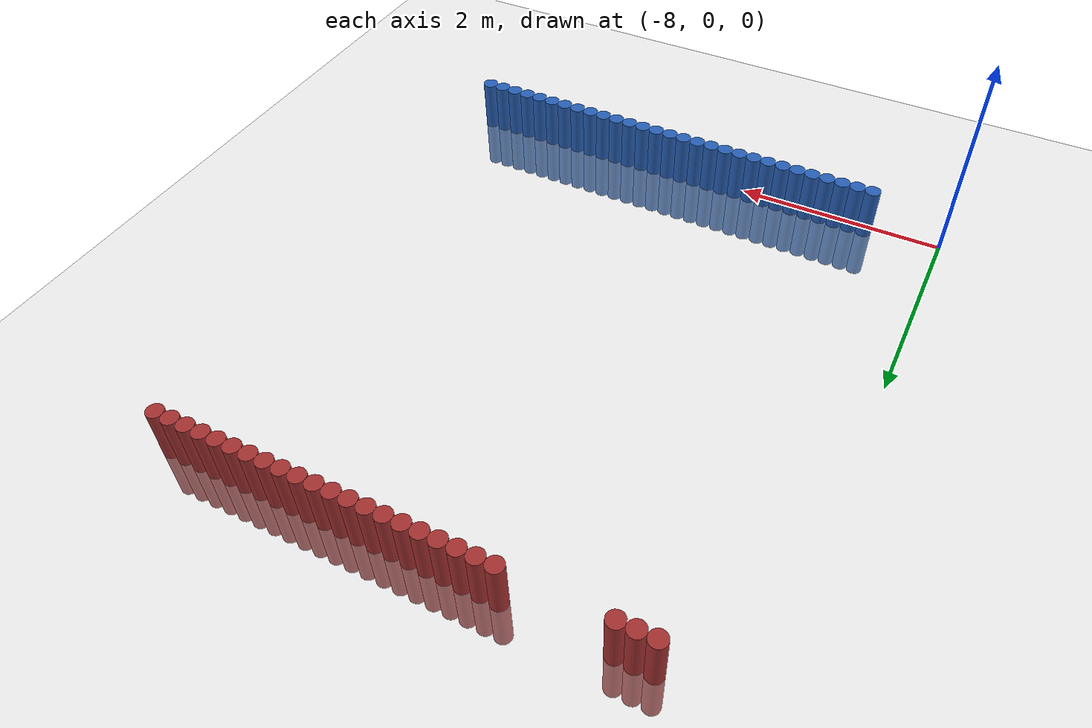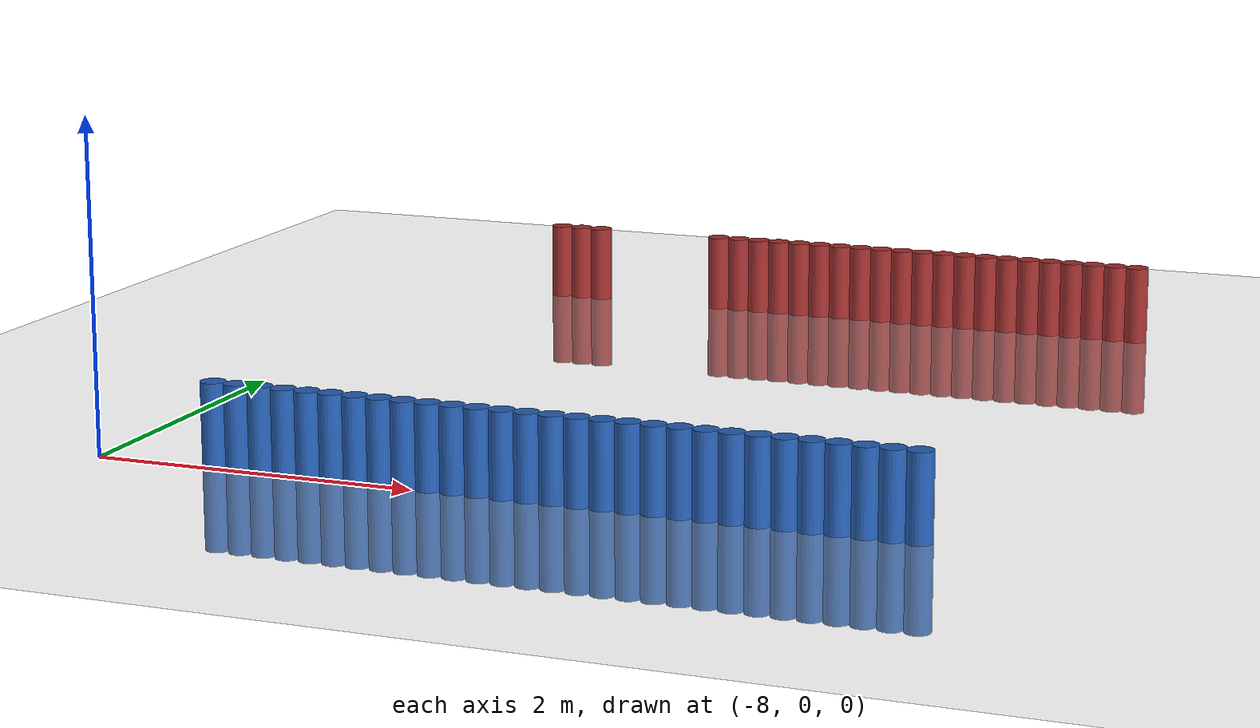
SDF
<sdf version="1.6">
 <world name="default">
  <model name="ground_plane">
   <static>1</static>
   <link name="link">
    <collision name="collision">
     <geometry><plane><normal>0 0 1</normal><size>100 100</size></plane></geometry>
     <surface><friction><ode><mu>100</mu><mu2>50</mu2></ode></friction></surface>
    </collision>
    <visual name="visual">
     <cast_shadows>0</cast_shadows>
     <geometry><plane><normal>0 0 1</normal><size>100 100</size></plane></geometry>
     <material>
      <script><uri>file://media/materials/scripts/gazebo.material</uri><name>Gazebo/Grey</name></script>
     </material>
    </visual>
   </link>
  </model>
  <model name="unit_cylinder_20">
   <static>1</static>
   <pose>-3.075000 0.075000 0.000000 0.000000 0.000000 0.000000</pose>
   <link name="link">
    <inertial>
     <mass>1</mass>
     <inertia><ixx>0.145833</ixx><ixy>0</ixy><ixz>0</ixz><iyy>0.145833</iyy><iyz>0</iyz><izz>0.125</izz></inertia>
    </inertial>
    <collision name="collision">
     <geometry><cylinder><radius>0.075000</radius><length>1</length></cylinder></geometry>
    </collision>
    <visual name="visual">
     <geometry><cylinder><radius>0.075000</radius><length>1</length></cylinder></geometry>
     <material>
      <ambient>0.152000 0.379000 0.720000 1</ambient>
      <diffuse>0.152000 0.379000 0.720000 1</diffuse>
     </material>
     <material>
      <script><name>Gazebo/Grey</name><uri>file://media/materials/scripts/gazebo.material</uri></script>
     </material>
    </visual>
   </link>
  </model>
  <model name="unit_cylinder_21">
   <static>1</static>
   <pose>-3.225000 0.075000 0.000000 0.000000 0.000000 0.000000</pose>
   <link name="link">
    <inertial>
     <mass>1</mass>
     <inertia><ixx>0.145833</ixx><ixy>0</ixy><ixz>0</ixz><iyy>0.145833</iyy><iyz>0</iyz><izz>0.125</izz></inertia>
    </inertial>
    <collision name="collision">
     <geometry><cylinder><radius>0.075000</radius><length>1</length></cylinder></geometry>
    </collision>
    <visual name="visual">
     <geometry><cylinder><radius>0.075000</radius><length>1</length></cylinder></geometry>
     <material>
      <ambient>0.152000 0.379000 0.720000 1</ambient>
      <diffuse>0.152000 0.379000 0.720000 1</diffuse>
     </material>
     <material>
      <script><name>Gazebo/Grey</name><uri>file://media/materials/scripts/gazebo.material</uri></script>
     </material>
    </visual>
   </link>
  </model>
  <model name="unit_cylinder_22">
   <static>1</static>
   <pose>-3.375000 0.075000 0.000000 0.000000 0.000000 0.000000</pose>
   <link name="link">
    <inertial>
     <mass>1</mass>
     <inertia><ixx>0.145833</ixx><ixy>0</ixy><ixz>0</ixz><iyy>0.145833</iyy><iyz>0</iyz><izz>0.125</izz></inertia>
    </inertial>
    <collision name="collision">
     <geometry><cylinder><radius>0.075000</radius><length>1</length></cylinder></geometry>
    </collision>
    <visual name="visual">
     <geometry><cylinder><radius>0.075000</radius><length>1</length></cylinder></geometry>
     <material>
      <ambient>0.152000 0.379000 0.720000 1</ambient>
      <diffuse>0.152000 0.379000 0.720000 1</diffuse>
     </material>
     <material>
      <script><name>Gazebo/Grey</name><uri>file://media/materials/scripts/gazebo.material</uri></script>
     </material>
    </visual>
   </link>
  </model>
  <model name="unit_cylinder_23">
   <static>1</static>
   <pose>-3.525000 0.075000 0.000000 0.000000 0.000000 0.000000</pose>
   <link name="link">
    <inertial>
     <mass>1</mass>
     <inertia><ixx>0.145833</ixx><ixy>0</ixy><ixz>0</ixz><iyy>0.145833</iyy><iyz>0</iyz><izz>0.125</izz></inertia>
    </inertial>
    <collision name="collision">
     <geometry><cylinder><radius>0.075000</radius><length>1</length></cylinder></geometry>
    </collision>
    <visual name="visual">
     <geometry><cylinder><radius>0.075000</radius><length>1</length></cylinder></geometry>
     <material>
      <ambient>0.152000 0.379000 0.720000 1</ambient>
      <diffuse>0.152000 0.379000 0.720000 1</diffuse>
     </material>
     <material>
      <script><name>Gazebo/Grey</name><uri>file://media/materials/scripts/gazebo.material</uri></script>
     </material>
    </visual>
   </link>
  </model>
  <model name="unit_cylinder_24">
   <static>1</static>
   <pose>-3.675000 0.075000 0.000000 0.000000 0.000000 0.000000</pose>
   <link name="link">
    <inertial>
     <mass>1</mass>
     <inertia><ixx>0.145833</ixx><ixy>0</ixy><ixz>0</ixz><iyy>0.145833</iyy><iyz>0</iyz><izz>0.125</izz></inertia>
    </inertial>
    <collision name="collision">
     <geometry><cylinder><radius>0.075000</radius><length>1</length></cylinder></geometry>
    </collision>
    <visual name="visual">
     <geometry><cylinder><radius>0.075000</radius><length>1</length></cylinder></geometry>
     <material>
      <ambient>0.152000 0.379000 0.720000 1</ambient>
      <diffuse>0.152000 0.379000 0.720000 1</diffuse>
     </material>
     <material>
      <script><name>Gazebo/Grey</name><uri>file://media/materials/scripts/gazebo.material</uri></script>
     </material>
    </visual>
   </link>
  </model>
  <model name="unit_cylinder_25">
   <static>1</static>
   <pose>-3.825000 0.075000 0.000000 0.000000 0.000000 0.000000</pose>
   <link name="link">
    <inertial>
     <mass>1</mass>
     <inertia><ixx>0.145833</ixx><ixy>0</ixy><ixz>0</ixz><iyy>0.145833</iyy><iyz>0</iyz><izz>0.125</izz></inertia>
    </inertial>
    <collision name="collision">
     <geometry><cylinder><radius>0.075000</radius><length>1</length></cylinder></geometry>
    </collision>
    <visual name="visual">
     <geometry><cylinder><radius>0.075000</radius><length>1</length></cylinder></geometry>
     <material>
      <ambient>0.152000 0.379000 0.720000 1</ambient>
      <diffuse>0.152000 0.379000 0.720000 1</diffuse>
     </material>
     <material>
      <script><name>Gazebo/Grey</name><uri>file://media/materials/scripts/gazebo.material</uri></script>
     </material>
    </visual>
   </link>
  </model>
  <model name="unit_cylinder_26">
   <static>1</static>
   <pose>-3.975000 0.075000 0.000000 0.000000 0.000000 0.000000</pose>
   <link name="link">
    <inertial>
     <mass>1</mass>
     <inertia><ixx>0.145833</ixx><ixy>0</ixy><ixz>0</ixz><iyy>0.145833</iyy><iyz>0</iyz><izz>0.125</izz></inertia>
    </inertial>
    <collision name="collision">
     <geometry><cylinder><radius>0.075000</radius><length>1</length></cylinder></geometry>
    </collision>
    <visual name="visual">
     <geometry><cylinder><radius>0.075000</radius><length>1</length></cylinder></geometry>
     <material>
      <ambient>0.152000 0.379000 0.720000 1</ambient>
      <diffuse>0.152000 0.379000 0.720000 1</diffuse>
     </material>
     <material>
      <script><name>Gazebo/Grey</name><uri>file://media/materials/scripts/gazebo.material</uri></script>
     </material>
    </visual>
   </link>
  </model>
  <model name="unit_cylinder_27">
   <static>1</static>
   <pose>-4.125000 0.075000 0.000000 0.000000 0.000000 0.000000</pose>
   <link name="link">
    <inertial>
     <mass>1</mass>
     <inertia><ixx>0.145833</ixx><ixy>0</ixy><ixz>0</ixz><iyy>0.145833</iyy><iyz>0</iyz><izz>0.125</izz></inertia>
    </inertial>
    <collision name="collision">
     <geometry><cylinder><radius>0.075000</radius><length>1</length></cylinder></geometry>
    </collision>
    <visual name="visual">
     <geometry><cylinder><radius>0.075000</radius><length>1</length></cylinder></geometry>
     <material>
      <ambient>0.152000 0.379000 0.720000 1</ambient>
      <diffuse>0.152000 0.379000 0.720000 1</diffuse>
     </material>
     <material>
      <script><name>Gazebo/Grey</name><uri>file://media/materials/scripts/gazebo.material</uri></script>
     </material>
    </visual>
   </link>
  </model>
  <model name="unit_cylinder_28">
   <static>1</static>
   <pose>-4.275000 0.075000 0.000000 0.000000 0.000000 0.000000</pose>
   <link name="link">
    <inertial>
     <mass>1</mass>
     <inertia><ixx>0.145833</ixx><ixy>0</ixy><ixz>0</ixz><iyy>0.145833</iyy><iyz>0</iyz><izz>0.125</izz></inertia>
    </inertial>
    <collision name="collision">
     <geometry><cylinder><radius>0.075000</radius><length>1</length></cylinder></geometry>
    </collision>
    <visual name="visual">
     <geometry><cylinder><radius>0.075000</radius><length>1</length></cylinder></geometry>
     <material>
      <ambient>0.152000 0.379000 0.720000 1</ambient>
      <diffuse>0.152000 0.379000 0.720000 1</diffuse>
     </material>
     <material>
      <script><name>Gazebo/Grey</name><uri>file://media/materials/scripts/gazebo.material</uri></script>
     </material>
    </visual>
   </link>
  </model>
  <model name="unit_cylinder_29">
   <static>1</static>
   <pose>-4.425000 0.075000 0.000000 0.000000 0.000000 0.000000</pose>
   <link name="link">
    <inertial>
     <mass>1</mass>
     <inertia><ixx>0.145833</ixx><ixy>0</ixy><ixz>0</ixz><iyy>0.145833</iyy><iyz>0</iyz><izz>0.125</izz></inertia>
    </inertial>
    <collision name="collision">
     <geometry><cylinder><radius>0.075000</radius><length>1</length></cylinder></geometry>
    </collision>
    <visual name="visual">
     <geometry><cylinder><radius>0.075000</radius><length>1</length></cylinder></geometry>
     <material>
      <ambient>0.152000 0.379000 0.720000 1</ambient>
      <diffuse>0.152000 0.379000 0.720000 1</diffuse>
     </material>
     <material>
      <script><name>Gazebo/Grey</name><uri>file://media/materials/scripts/gazebo.material</uri></script>
     </material>
    </visual>
   </link>
  </model>
  <model name="unit_cylinder_30">
   <static>1</static>
   <pose>-4.575000 0.075000 0.000000 0.000000 0.000000 0.000000</pose>
   <link name="link">
    <inertial>
     <mass>1</mass>
     <inertia><ixx>0.145833</ixx><ixy>0</ixy><ixz>0</ixz><iyy>0.145833</iyy><iyz>0</iyz><izz>0.125</izz></inertia>
    </inertial>
    <collision name="collision">
     <geometry><cylinder><radius>0.075000</radius><length>1</length></cylinder></geometry>
    </collision>
    <visual name="visual">
     <geometry><cylinder><radius>0.075000</radius><length>1</length></cylinder></geometry>
     <material>
      <ambient>0.152000 0.379000 0.720000 1</ambient>
      <diffuse>0.152000 0.379000 0.720000 1</diffuse>
     </material>
     <material>
      <script><name>Gazebo/Grey</name><uri>file://media/materials/scripts/gazebo.material</uri></script>
     </material>
    </visual>
   </link>
  </model>
  <model name="unit_cylinder_31">
   <static>1</static>
   <pose>-4.725000 0.075000 0.000000 0.000000 0.000000 0.000000</pose>
   <link name="link">
    <inertial>
     <mass>1</mass>
     <inertia><ixx>0.145833</ixx><ixy>0</ixy><ixz>0</ixz><iyy>0.145833</iyy><iyz>0</iyz><izz>0.125</izz></inertia>
    </inertial>
    <collision name="collision">
     <geometry><cylinder><radius>0.075000</radius><length>1</length></cylinder></geometry>
    </collision>
    <visual name="visual">
     <geometry><cylinder><radius>0.075000</radius><length>1</length></cylinder></geometry>
     <material>
      <ambient>0.152000 0.379000 0.720000 1</ambient>
      <diffuse>0.152000 0.379000 0.720000 1</diffuse>
     </material>
     <material>
      <script><name>Gazebo/Grey</name><uri>file://media/materials/scripts/gazebo.material</uri></script>
     </material>
    </visual>
   </link>
  </model>
  <model name="unit_cylinder_32">
   <static>1</static>
   <pose>-4.875000 0.075000 0.000000 0.000000 0.000000 0.000000</pose>
   <link name="link">
    <inertial>
     <mass>1</mass>
     <inertia><ixx>0.145833</ixx><ixy>0</ixy><ixz>0</ixz><iyy>0.145833</iyy><iyz>0</iyz><izz>0.125</izz></inertia>
    </inertial>
    <collision name="collision">
     <geometry><cylinder><radius>0.075000</radius><length>1</length></cylinder></geometry>
    </collision>
    <visual name="visual">
     <geometry><cylinder><radius>0.075000</radius><length>1</length></cylinder></geometry>
     <material>
      <ambient>0.152000 0.379000 0.720000 1</ambient>
      <diffuse>0.152000 0.379000 0.720000 1</diffuse>
     </material>
     <material>
      <script><name>Gazebo/Grey</name><uri>file://media/materials/scripts/gazebo.material</uri></script>
     </material>
    </visual>
   </link>
  </model>
  <model name="unit_cylinder_33">
   <static>1</static>
   <pose>-5.025000 0.075000 0.000000 0.000000 0.000000 0.000000</pose>
   <link name="link">
    <inertial>
     <mass>1</mass>
     <inertia><ixx>0.145833</ixx><ixy>0</ixy><ixz>0</ixz><iyy>0.145833</iyy><iyz>0</iyz><izz>0.125</izz></inertia>
    </inertial>
    <collision name="collision">
     <geometry><cylinder><radius>0.075000</radius><length>1</length></cylinder></geometry>
    </collision>
    <visual name="visual">
     <geometry><cylinder><radius>0.075000</radius><length>1</length></cylinder></geometry>
     <material>
      <ambient>0.152000 0.379000 0.720000 1</ambient>
      <diffuse>0.152000 0.379000 0.720000 1</diffuse>
     </material>
     <material>
      <script><name>Gazebo/Grey</name><uri>file://media/materials/scripts/gazebo.material</uri></script>
     </material>
    </visual>
   </link>
  </model>
  <model name="unit_cylinder_34">
   <static>1</static>
   <pose>-5.175000 0.075000 0.000000 0.000000 0.000000 0.000000</pose>
   <link name="link">
    <inertial>
     <mass>1</mass>
     <inertia><ixx>0.145833</ixx><ixy>0</ixy><ixz>0</ixz><iyy>0.145833</iyy><iyz>0</iyz><izz>0.125</izz></inertia>
    </inertial>
    <collision name="collision">
     <geometry><cylinder><radius>0.075000</radius><length>1</length></cylinder></geometry>
    </collision>
    <visual name="visual">
     <geometry><cylinder><radius>0.075000</radius><length>1</length></cylinder></geometry>
     <material>
      <ambient>0.152000 0.379000 0.720000 1</ambient>
      <diffuse>0.152000 0.379000 0.720000 1</diffuse>
     </material>
     <material>
      <script><name>Gazebo/Grey</name><uri>file://media/materials/scripts/gazebo.material</uri></script>
     </material>
    </visual>
   </link>
  </model>
  <model name="unit_cylinder_35">
   <static>1</static>
   <pose>-5.325000 0.075000 0.000000 0.000000 0.000000 0.000000</pose>
   <link name="link">
    <inertial>
     <mass>1</mass>
     <inertia><ixx>0.145833</ixx><ixy>0</ixy><ixz>0</ixz><iyy>0.145833</iyy><iyz>0</iyz><izz>0.125</izz></inertia>
    </inertial>
    <collision name="collision">
     <geometry><cylinder><radius>0.075000</radius><length>1</length></cylinder></geometry>
    </collision>
    <visual name="visual">
     <geometry><cylinder><radius>0.075000</radius><length>1</length></cylinder></geometry>
     <material>
      <ambient>0.152000 0.379000 0.720000 1</ambient>
      <diffuse>0.152000 0.379000 0.720000 1</diffuse>
     </material>
     <material>
      <script><name>Gazebo/Grey</name><uri>file://media/materials/scripts/gazebo.material</uri></script>
     </material>
    </visual>
   </link>
  </model>
  <model name="unit_cylinder_36">
   <static>1</static>
   <pose>-5.475000 0.075000 0.000000 0.000000 0.000000 0.000000</pose>
   <link name="link">
    <inertial>
     <mass>1</mass>
     <inertia><ixx>0.145833</ixx><ixy>0</ixy><ixz>0</ixz><iyy>0.145833</iyy><iyz>0</iyz><izz>0.125</izz></inertia>
    </inertial>
    <collision name="collision">
     <geometry><cylinder><radius>0.075000</radius><length>1</length></cylinder></geometry>
    </collision>
    <visual name="visual">
     <geometry><cylinder><radius>0.075000</radius><length>1</length></cylinder></geometry>
     <material>
      <ambient>0.152000 0.379000 0.720000 1</ambient>
      <diffuse>0.152000 0.379000 0.720000 1</diffuse>
     </material>
     <material>
      <script><name>Gazebo/Grey</name><uri>file://media/materials/scripts/gazebo.material</uri></script>
     </material>
    </visual>
   </link>
  </model>
  <model name="unit_cylinder_37">
   <static>1</static>
   <pose>-5.625000 0.075000 0.000000 0.000000 0.000000 0.000000</pose>
   <link name="link">
    <inertial>
     <mass>1</mass>
     <inertia><ixx>0.145833</ixx><ixy>0</ixy><ixz>0</ixz><iyy>0.145833</iyy><iyz>0</iyz><izz>0.125</izz></inertia>
    </inertial>
    <collision name="collision">
     <geometry><cylinder><radius>0.075000</radius><length>1</length></cylinder></geometry>
    </collision>
    <visual name="visual">
     <geometry><cylinder><radius>0.075000</radius><length>1</length></cylinder></geometry>
     <material>
      <ambient>0.152000 0.379000 0.720000 1</ambient>
      <diffuse>0.152000 0.379000 0.720000 1</diffuse>
     </material>
     <material>
      <script><name>Gazebo/Grey</name><uri>file://media/materials/scripts/gazebo.material</uri></script>
     </material>
    </visual>
   </link>
  </model>
  <model name="unit_cylinder_38">
   <static>1</static>
   <pose>-5.775000 0.075000 0.000000 0.000000 0.000000 0.000000</pose>
   <link name="link">
    <inertial>
     <mass>1</mass>
     <inertia><ixx>0.145833</ixx><ixy>0</ixy><ixz>0</ixz><iyy>0.145833</iyy><iyz>0</iyz><izz>0.125</izz></inertia>
    </inertial>
    <collision name="collision">
     <geometry><cylinder><radius>0.075000</radius><length>1</length></cylinder></geometry>
    </collision>
    <visual name="visual">
     <geometry><cylinder><radius>0.075000</radius><length>1</length></cylinder></geometry>
     <material>
      <ambient>0.152000 0.379000 0.720000 1</ambient>
      <diffuse>0.152000 0.379000 0.720000 1</diffuse>
     </material>
     <material>
      <script><name>Gazebo/Grey</name><uri>file://media/materials/scripts/gazebo.material</uri></script>
     </material>
    </visual>
   </link>
  </model>
  <model name="unit_cylinder_39">
   <static>1</static>
   <pose>-5.925000 0.075000 0.000000 0.000000 0.000000 0.000000</pose>
   <link name="link">
    <inertial>
     <mass>1</mass>
     <inertia><ixx>0.145833</ixx><ixy>0</ixy><ixz>0</ixz><iyy>0.145833</iyy><iyz>0</iyz><izz>0.125</izz></inertia>
    </inertial>
    <collision name="collision">
     <geometry><cylinder><radius>0.075000</radius><length>1</length></cylinder></geometry>
    </collision>
    <visual name="visual">
     <geometry><cylinder><radius>0.075000</radius><length>1</length></cylinder></geometry>
     <material>
      <ambient>0.152000 0.379000 0.720000 1</ambient>
      <diffuse>0.152000 0.379000 0.720000 1</diffuse>
     </material>
     <material>
      <script><name>Gazebo/Grey</name><uri>file://media/materials/scripts/gazebo.material</uri></script>
     </material>
    </visual>
   </link>
  </model>
  <model name="unit_cylinder_40">
   <static>1</static>
   <pose>-6.075000 0.075000 0.000000 0.000000 0.000000 0.000000</pose>
   <link name="link">
    <inertial>
     <mass>1</mass>
     <inertia><ixx>0.145833</ixx><ixy>0</ixy><ixz>0</ixz><iyy>0.145833</iyy><iyz>0</iyz><izz>0.125</izz></inertia>
    </inertial>
    <collision name="collision">
     <geometry><cylinder><radius>0.075000</radius><length>1</length></cylinder></geometry>
    </collision>
    <visual name="visual">
     <geometry><cylinder><radius>0.075000</radius><length>1</length></cylinder></geometry>
     <material>
      <ambient>0.152000 0.379000 0.720000 1</ambient>
      <diffuse>0.152000 0.379000 0.720000 1</diffuse>
     </material>
     <material>
      <script><name>Gazebo/Grey</name><uri>file://media/materials/scripts/gazebo.material</uri></script>
     </material>
    </visual>
   </link>
  </model>
  <model name="unit_cylinder_41">
   <static>1</static>
   <pose>-6.225000 0.075000 0.000000 0.000000 0.000000 0.000000</pose>
   <link name="link">
    <inertial>
     <mass>1</mass>
     <inertia><ixx>0.145833</ixx><ixy>0</ixy><ixz>0</ixz><iyy>0.145833</iyy><iyz>0</iyz><izz>0.125</izz></inertia>
    </inertial>
    <collision name="collision">
     <geometry><cylinder><radius>0.075000</radius><length>1</length></cylinder></geometry>
    </collision>
    <visual name="visual">
     <geometry><cylinder><radius>0.075000</radius><length>1</length></cylinder></geometry>
     <material>
      <ambient>0.152000 0.379000 0.720000 1</ambient>
      <diffuse>0.152000 0.379000 0.720000 1</diffuse>
     </material>
     <material>
      <script><name>Gazebo/Grey</name><uri>file://media/materials/scripts/gazebo.material</uri></script>
     </material>
    </visual>
   </link>
  </model>
  <model name="unit_cylinder_42">
   <static>1</static>
   <pose>-6.375000 0.075000 0.000000 0.000000 0.000000 0.000000</pose>
   <link name="link">
    <inertial>
     <mass>1</mass>
     <inertia><ixx>0.145833</ixx><ixy>0</ixy><ixz>0</ixz><iyy>0.145833</iyy><iyz>0</iyz><izz>0.125</izz></inertia>
    </inertial>
    <collision name="collision">
     <geometry><cylinder><radius>0.075000</radius><length>1</length></cylinder></geometry>
    </collision>
    <visual name="visual">
     <geometry><cylinder><radius>0.075000</radius><length>1</length></cylinder></geometry>
     <material>
      <ambient>0.152000 0.379000 0.720000 1</ambient>
      <diffuse>0.152000 0.379000 0.720000 1</diffuse>
     </material>
     <material>
      <script><name>Gazebo/Grey</name><uri>file://media/materials/scripts/gazebo.material</uri></script>
     </material>
    </visual>
   </link>
  </model>
  <model name="unit_cylinder_43">
   <static>1</static>
   <pose>-6.525000 0.075000 0.000000 0.000000 0.000000 0.000000</pose>
   <link name="link">
    <inertial>
     <mass>1</mass>
     <inertia><ixx>0.145833</ixx><ixy>0</ixy><ixz>0</ixz><iyy>0.145833</iyy><iyz>0</iyz><izz>0.125</izz></inertia>
    </inertial>
    <collision name="collision">
     <geometry><cylinder><radius>0.075000</radius><length>1</length></cylinder></geometry>
    </collision>
    <visual name="visual">
     <geometry><cylinder><radius>0.075000</radius><length>1</length></cylinder></geometry>
     <material>
      <ambient>0.152000 0.379000 0.720000 1</ambient>
      <diffuse>0.152000 0.379000 0.720000 1</diffuse>
     </material>
     <material>
      <script><name>Gazebo/Grey</name><uri>file://media/materials/scripts/gazebo.material</uri></script>
     </material>
    </visual>
   </link>
  </model>
  <model name="unit_cylinder_44">
   <static>1</static>
   <pose>-6.675000 0.075000 0.000000 0.000000 0.000000 0.000000</pose>
   <link name="link">
    <inertial>
     <mass>1</mass>
     <inertia><ixx>0.145833</ixx><ixy>0</ixy><ixz>0</ixz><iyy>0.145833</iyy><iyz>0</iyz><izz>0.125</izz></inertia>
    </inertial>
    <collision name="collision">
     <geometry><cylinder><radius>0.075000</radius><length>1</length></cylinder></geometry>
    </collision>
    <visual name="visual">
     <geometry><cylinder><radius>0.075000</radius><length>1</length></cylinder></geometry>
     <material>
      <ambient>0.152000 0.379000 0.720000 1</ambient>
      <diffuse>0.152000 0.379000 0.720000 1</diffuse>
     </material>
     <material>
      <script><name>Gazebo/Grey</name><uri>file://media/materials/scripts/gazebo.material</uri></script>
     </material>
    </visual>
   </link>
  </model>
  <model name="unit_cylinder_45">
   <static>1</static>
   <pose>-6.825000 0.075000 0.000000 0.000000 0.000000 0.000000</pose>
   <link name="link">
    <inertial>
     <mass>1</mass>
     <inertia><ixx>0.145833</ixx><ixy>0</ixy><ixz>0</ixz><iyy>0.145833</iyy><iyz>0</iyz><izz>0.125</izz></inertia>
    </inertial>
    <collision name="collision">
     <geometry><cylinder><radius>0.075000</radius><length>1</length></cylinder></geometry>
    </collision>
    <visual name="visual">
     <geometry><cylinder><radius>0.075000</radius><length>1</length></cylinder></geometry>
     <material>
      <ambient>0.152000 0.379000 0.720000 1</ambient>
      <diffuse>0.152000 0.379000 0.720000 1</diffuse>
     </material>
     <material>
      <script><name>Gazebo/Grey</name><uri>file://media/materials/scripts/gazebo.material</uri></script>
     </material>
    </visual>
   </link>
  </model>
  <model name="unit_cylinder_46">
   <static>1</static>
   <pose>-6.975000 0.075000 0.000000 0.000000 0.000000 0.000000</pose>
   <link name="link">
    <inertial>
     <mass>1</mass>
     <inertia><ixx>0.145833</ixx><ixy>0</ixy><ixz>0</ixz><iyy>0.145833</iyy><iyz>0</iyz><izz>0.125</izz></inertia>
    </inertial>
    <collision name="collision">
     <geometry><cylinder><radius>0.075000</radius><length>1</length></cylinder></geometry>
    </collision>
    <visual name="visual">
     <geometry><cylinder><radius>0.075000</radius><length>1</length></cylinder></geometry>
     <material>
      <ambient>0.152000 0.379000 0.720000 1</ambient>
      <diffuse>0.152000 0.379000 0.720000 1</diffuse>
     </material>
     <material>
      <script><name>Gazebo/Grey</name><uri>file://media/materials/scripts/gazebo.material</uri></script>
     </material>
    </visual>
   </link>
  </model>
  <model name="unit_cylinder_47">
   <static>1</static>
   <pose>-7.125000 0.075000 0.000000 0.000000 0.000000 0.000000</pose>
   <link name="link">
    <inertial>
     <mass>1</mass>
     <inertia><ixx>0.145833</ixx><ixy>0</ixy><ixz>0</ixz><iyy>0.145833</iyy><iyz>0</iyz><izz>0.125</izz></inertia>
    </inertial>
    <collision name="collision">
     <geometry><cylinder><radius>0.075000</radius><length>1</length></cylinder></geometry>
    </collision>
    <visual name="visual">
     <geometry><cylinder><radius>0.075000</radius><length>1</length></cylinder></geometry>
     <material>
      <ambient>0.152000 0.379000 0.720000 1</ambient>
      <diffuse>0.152000 0.379000 0.720000 1</diffuse>
     </material>
     <material>
      <script><name>Gazebo/Grey</name><uri>file://media/materials/scripts/gazebo.material</uri></script>
     </material>
    </visual>
   </link>
  </model>
  <model name="unit_cylinder_48">
   <static>1</static>
   <pose>-7.275000 0.075000 0.000000 0.000000 0.000000 0.000000</pose>
   <link name="link">
    <inertial>
     <mass>1</mass>
     <inertia><ixx>0.145833</ixx><ixy>0</ixy><ixz>0</ixz><iyy>0.145833</iyy><iyz>0</iyz><izz>0.125</izz></inertia>
    </inertial>
    <collision name="collision">
     <geometry><cylinder><radius>0.075000</radius><length>1</length></cylinder></geometry>
    </collision>
    <visual name="visual">
     <geometry><cylinder><radius>0.075000</radius><length>1</length></cylinder></geometry>
     <material>
      <ambient>0.152000 0.379000 0.720000 1</ambient>
      <diffuse>0.152000 0.379000 0.720000 1</diffuse>
     </material>
     <material>
      <script><name>Gazebo/Grey</name><uri>file://media/materials/scripts/gazebo.material</uri></script>
     </material>
    </visual>
   </link>
  </model>
  <model name="unit_cylinder_203">
   <static>1</static>
   <pose>-7.275000 5.175000 0.000000 0.000000 0.000000 0.000000</pose>
   <link name="link">
    <inertial>
     <mass>1</mass>
     <inertia><ixx>0.145833</ixx><ixy>0</ixy><ixz>0</ixz><iyy>0.145833</iyy><iyz>0</iyz><izz>0.125</izz></inertia>
    </inertial>
    <collision name="collision">
     <geometry><cylinder><radius>0.075000</radius><length>1</length></cylinder></geometry>
    </collision>
    <visual name="visual">
     <geometry><cylinder><radius>0.075000</radius><length>1</length></cylinder></geometry>
     <material>
      <ambient>0.648000 0.192000 0.192000 1</ambient>
      <diffuse>0.648000 0.192000 0.192000 1</diffuse>
     </material>
     <material>
      <script><name>Gazebo/Grey</name><uri>file://media/materials/scripts/gazebo.material</uri></script>
     </material>
    </visual>
   </link>
  </model>
  <model name="unit_cylinder_204">
   <static>1</static>
   <pose>-7.125000 5.175000 0.000000 0.000000 0.000000 0.000000</pose>
   <link name="link">
    <inertial>
     <mass>1</mass>
     <inertia><ixx>0.145833</ixx><ixy>0</ixy><ixz>0</ixz><iyy>0.145833</iyy><iyz>0</iyz><izz>0.125</izz></inertia>
    </inertial>
    <collision name="collision">
     <geometry><cylinder><radius>0.075000</radius><length>1</length></cylinder></geometry>
    </collision>
    <visual name="visual">
     <geometry><cylinder><radius>0.075000</radius><length>1</length></cylinder></geometry>
     <material>
      <ambient>0.648000 0.192000 0.192000 1</ambient>
      <diffuse>0.648000 0.192000 0.192000 1</diffuse>
     </material>
     <material>
      <script><name>Gazebo/Grey</name><uri>file://media/materials/scripts/gazebo.material</uri></script>
     </material>
    </visual>
   </link>
  </model>
  <model name="unit_cylinder_205">
   <static>1</static>
   <pose>-6.975000 5.175000 0.000000 0.000000 0.000000 0.000000</pose>
   <link name="link">
    <inertial>
     <mass>1</mass>
     <inertia><ixx>0.145833</ixx><ixy>0</ixy><ixz>0</ixz><iyy>0.145833</iyy><iyz>0</iyz><izz>0.125</izz></inertia>
    </inertial>
    <collision name="collision">
     <geometry><cylinder><radius>0.075000</radius><length>1</length></cylinder></geometry>
    </collision>
    <visual name="visual">
     <geometry><cylinder><radius>0.075000</radius><length>1</length></cylinder></geometry>
     <material>
      <ambient>0.648000 0.192000 0.192000 1</ambient>
      <diffuse>0.648000 0.192000 0.192000 1</diffuse>
     </material>
     <material>
      <script><name>Gazebo/Grey</name><uri>file://media/materials/scripts/gazebo.material</uri></script>
     </material>
    </visual>
   </link>
  </model>
  <model name="unit_cylinder_223">
   <static>1</static>
   <pose>-6.075000 5.175000 0.000000 0.000000 0.000000 0.000000</pose>
   <link name="link">
    <inertial>
     <mass>1</mass>
     <inertia><ixx>0.145833</ixx><ixy>0</ixy><ixz>0</ixz><iyy>0.145833</iyy><iyz>0</iyz><izz>0.125</izz></inertia>
    </inertial>
    <collision name="collision">
     <geometry><cylinder><radius>0.075000</radius><length>1</length></cylinder></geometry>
    </collision>
    <visual name="visual">
     <geometry><cylinder><radius>0.075000</radius><length>1</length></cylinder></geometry>
     <material>
      <ambient>0.648000 0.192000 0.192000 1</ambient>
      <diffuse>0.648000 0.192000 0.192000 1</diffuse>
     </material>
     <material>
      <script><name>Gazebo/Grey</name><uri>file://media/materials/scripts/gazebo.material</uri></script>
     </material>
    </visual>
   </link>
  </model>
  <model name="unit_cylinder_227">
   <static>1</static>
   <pose>-5.925000 5.175000 0.000000 0.000000 0.000000 0.000000</pose>
   <link name="link">
    <inertial>
     <mass>1</mass>
     <inertia><ixx>0.145833</ixx><ixy>0</ixy><ixz>0</ixz><iyy>0.145833</iyy><iyz>0</iyz><izz>0.125</izz></inertia>
    </inertial>
    <collision name="collision">
     <geometry><cylinder><radius>0.075000</radius><length>1</length></cylinder></geometry>
    </collision>
    <visual name="visual">
     <geometry><cylinder><radius>0.075000</radius><length>1</length></cylinder></geometry>
     <material>
      <ambient>0.648000 0.192000 0.192000 1</ambient>
      <diffuse>0.648000 0.192000 0.192000 1</diffuse>
     </material>
     <material>
      <script><name>Gazebo/Grey</name><uri>file://media/materials/scripts/gazebo.material</uri></script>
     </material>
    </visual>
   </link>
  </model>
  <model name="unit_cylinder_233">
   <static>1</static>
   <pose>-5.775000 5.175000 0.000000 0.000000 0.000000 0.000000</pose>
   <link name="link">
    <inertial>
     <mass>1</mass>
     <inertia><ixx>0.145833</ixx><ixy>0</ixy><ixz>0</ixz><iyy>0.145833</iyy><iyz>0</iyz><izz>0.125</izz></inertia>
    </inertial>
    <collision name="collision">
     <geometry><cylinder><radius>0.075000</radius><length>1</length></cylinder></geometry>
    </collision>
    <visual name="visual">
     <geometry><cylinder><radius>0.075000</radius><length>1</length></cylinder></geometry>
     <material>
      <ambient>0.648000 0.192000 0.192000 1</ambient>
      <diffuse>0.648000 0.192000 0.192000 1</diffuse>
     </material>
     <material>
      <script><name>Gazebo/Grey</name><uri>file://media/materials/scripts/gazebo.material</uri></script>
     </material>
    </visual>
   </link>
  </model>
  <model name="unit_cylinder_238">
   <static>1</static>
   <pose>-5.625000 5.175000 0.000000 0.000000 0.000000 0.000000</pose>
   <link name="link">
    <inertial>
     <mass>1</mass>
     <inertia><ixx>0.145833</ixx><ixy>0</ixy><ixz>0</ixz><iyy>0.145833</iyy><iyz>0</iyz><izz>0.125</izz></inertia>
    </inertial>
    <collision name="collision">
     <geometry><cylinder><radius>0.075000</radius><length>1</length></cylinder></geometry>
    </collision>
    <visual name="visual">
     <geometry><cylinder><radius>0.075000</radius><length>1</length></cylinder></geometry>
     <material>
      <ambient>0.648000 0.192000 0.192000 1</ambient>
      <diffuse>0.648000 0.192000 0.192000 1</diffuse>
     </material>
     <material>
      <script><name>Gazebo/Grey</name><uri>file://media/materials/scripts/gazebo.material</uri></script>
     </material>
    </visual>
   </link>
  </model>
  <model name="unit_cylinder_239">
   <static>1</static>
   <pose>-5.475000 5.175000 0.000000 0.000000 0.000000 0.000000</pose>
   <link name="link">
    <inertial>
     <mass>1</mass>
     <inertia><ixx>0.145833</ixx><ixy>0</ixy><ixz>0</ixz><iyy>0.145833</iyy><iyz>0</iyz><izz>0.125</izz></inertia>
    </inertial>
    <collision name="collision">
     <geometry><cylinder><radius>0.075000</radius><length>1</length></cylinder></geometry>
    </collision>
    <visual name="visual">
     <geometry><cylinder><radius>0.075000</radius><length>1</length></cylinder></geometry>
     <material>
      <ambient>0.648000 0.192000 0.192000 1</ambient>
      <diffuse>0.648000 0.192000 0.192000 1</diffuse>
     </material>
     <material>
      <script><name>Gazebo/Grey</name><uri>file://media/materials/scripts/gazebo.material</uri></script>
     </material>
    </visual>
   </link>
  </model>
  <model name="unit_cylinder_242">
   <static>1</static>
   <pose>-5.325000 5.175000 0.000000 0.000000 0.000000 0.000000</pose>
   <link name="link">
    <inertial>
     <mass>1</mass>
     <inertia><ixx>0.145833</ixx><ixy>0</ixy><ixz>0</ixz><iyy>0.145833</iyy><iyz>0</iyz><izz>0.125</izz></inertia>
    </inertial>
    <collision name="collision">
     <geometry><cylinder><radius>0.075000</radius><length>1</length></cylinder></geometry>
    </collision>
    <visual name="visual">
     <geometry><cylinder><radius>0.075000</radius><length>1</length></cylinder></geometry>
     <material>
      <ambient>0.648000 0.192000 0.192000 1</ambient>
      <diffuse>0.648000 0.192000 0.192000 1</diffuse>
     </material>
     <material>
      <script><name>Gazebo/Grey</name><uri>file://media/materials/scripts/gazebo.material</uri></script>
     </material>
    </visual>
   </link>
  </model>
  <model name="unit_cylinder_245">
   <static>1</static>
   <pose>-5.175000 5.175000 0.000000 0.000000 0.000000 0.000000</pose>
   <link name="link">
    <inertial>
     <mass>1</mass>
     <inertia><ixx>0.145833</ixx><ixy>0</ixy><ixz>0</ixz><iyy>0.145833</iyy><iyz>0</iyz><izz>0.125</izz></inertia>
    </inertial>
    <collision name="collision">
     <geometry><cylinder><radius>0.075000</radius><length>1</length></cylinder></geometry>
    </collision>
    <visual name="visual">
     <geometry><cylinder><radius>0.075000</radius><length>1</length></cylinder></geometry>
     <material>
      <ambient>0.648000 0.192000 0.192000 1</ambient>
      <diffuse>0.648000 0.192000 0.192000 1</diffuse>
     </material>
     <material>
      <script><name>Gazebo/Grey</name><uri>file://media/materials/scripts/gazebo.material</uri></script>
     </material>
    </visual>
   </link>
  </model>
  <model name="unit_cylinder_246">
   <static>1</static>
   <pose>-5.025000 5.175000 0.000000 0.000000 0.000000 0.000000</pose>
   <link name="link">
    <inertial>
     <mass>1</mass>
     <inertia><ixx>0.145833</ixx><ixy>0</ixy><ixz>0</ixz><iyy>0.145833</iyy><iyz>0</iyz><izz>0.125</izz></inertia>
    </inertial>
    <collision name="collision">
     <geometry><cylinder><radius>0.075000</radius><length>1</length></cylinder></geometry>
    </collision>
    <visual name="visual">
     <geometry><cylinder><radius>0.075000</radius><length>1</length></cylinder></geometry>
     <material>
      <ambient>0.648000 0.192000 0.192000 1</ambient>
      <diffuse>0.648000 0.192000 0.192000 1</diffuse>
     </material>
     <material>
      <script><name>Gazebo/Grey</name><uri>file://media/materials/scripts/gazebo.material</uri></script>
     </material>
    </visual>
   </link>
  </model>
  <model name="unit_cylinder_247">
   <static>1</static>
   <pose>-4.875000 5.175000 0.000000 0.000000 0.000000 0.000000</pose>
   <link name="link">
    <inertial>
     <mass>1</mass>
     <inertia><ixx>0.145833</ixx><ixy>0</ixy><ixz>0</ixz><iyy>0.145833</iyy><iyz>0</iyz><izz>0.125</izz></inertia>
    </inertial>
    <collision name="collision">
     <geometry><cylinder><radius>0.075000</radius><length>1</length></cylinder></geometry>
    </collision>
    <visual name="visual">
     <geometry><cylinder><radius>0.075000</radius><length>1</length></cylinder></geometry>
     <material>
      <ambient>0.648000 0.192000 0.192000 1</ambient>
      <diffuse>0.648000 0.192000 0.192000 1</diffuse>
     </material>
     <material>
      <script><name>Gazebo/Grey</name><uri>file://media/materials/scripts/gazebo.material</uri></script>
     </material>
    </visual>
   </link>
  </model>
  <model name="unit_cylinder_249">
   <static>1</static>
   <pose>-4.725000 5.175000 0.000000 0.000000 0.000000 0.000000</pose>
   <link name="link">
    <inertial>
     <mass>1</mass>
     <inertia><ixx>0.145833</ixx><ixy>0</ixy><ixz>0</ixz><iyy>0.145833</iyy><iyz>0</iyz><izz>0.125</izz></inertia>
    </inertial>
    <collision name="collision">
     <geometry><cylinder><radius>0.075000</radius><length>1</length></cylinder></geometry>
    </collision>
    <visual name="visual">
     <geometry><cylinder><radius>0.075000</radius><length>1</length></cylinder></geometry>
     <material>
      <ambient>0.648000 0.192000 0.192000 1</ambient>
      <diffuse>0.648000 0.192000 0.192000 1</diffuse>
     </material>
     <material>
      <script><name>Gazebo/Grey</name><uri>file://media/materials/scripts/gazebo.material</uri></script>
     </material>
    </visual>
   </link>
  </model>
  <model name="unit_cylinder_251">
   <static>1</static>
   <pose>-4.575000 5.175000 0.000000 0.000000 0.000000 0.000000</pose>
   <link name="link">
    <inertial>
     <mass>1</mass>
     <inertia><ixx>0.145833</ixx><ixy>0</ixy><ixz>0</ixz><iyy>0.145833</iyy><iyz>0</iyz><izz>0.125</izz></inertia>
    </inertial>
    <collision name="collision">
     <geometry><cylinder><radius>0.075000</radius><length>1</length></cylinder></geometry>
    </collision>
    <visual name="visual">
     <geometry><cylinder><radius>0.075000</radius><length>1</length></cylinder></geometry>
     <material>
      <ambient>0.648000 0.192000 0.192000 1</ambient>
      <diffuse>0.648000 0.192000 0.192000 1</diffuse>
     </material>
     <material>
      <script><name>Gazebo/Grey</name><uri>file://media/materials/scripts/gazebo.material</uri></script>
     </material>
    </visual>
   </link>
  </model>
  <model name="unit_cylinder_253">
   <static>1</static>
   <pose>-4.425000 5.175000 0.000000 0.000000 0.000000 0.000000</pose>
   <link name="link">
    <inertial>
     <mass>1</mass>
     <inertia><ixx>0.145833</ixx><ixy>0</ixy><ixz>0</ixz><iyy>0.145833</iyy><iyz>0</iyz><izz>0.125</izz></inertia>
    </inertial>
    <collision name="collision">
     <geometry><cylinder><radius>0.075000</radius><length>1</length></cylinder></geometry>
    </collision>
    <visual name="visual">
     <geometry><cylinder><radius>0.075000</radius><length>1</length></cylinder></geometry>
     <material>
      <ambient>0.648000 0.192000 0.192000 1</ambient>
      <diffuse>0.648000 0.192000 0.192000 1</diffuse>
     </material>
     <material>
      <script><name>Gazebo/Grey</name><uri>file://media/materials/scripts/gazebo.material</uri></script>
     </material>
    </visual>
   </link>
  </model>
  <model name="unit_cylinder_265">
   <static>1</static>
   <pose>-4.275000 5.175000 0.000000 0.000000 0.000000 0.000000</pose>
   <link name="link">
    <inertial>
     <mass>1</mass>
     <inertia><ixx>0.145833</ixx><ixy>0</ixy><ixz>0</ixz><iyy>0.145833</iyy><iyz>0</iyz><izz>0.125</izz></inertia>
    </inertial>
    <collision name="collision">
     <geometry><cylinder><radius>0.075000</radius><length>1</length></cylinder></geometry>
    </collision>
    <visual name="visual">
     <geometry><cylinder><radius>0.075000</radius><length>1</length></cylinder></geometry>
     <material>
      <ambient>0.648000 0.192000 0.192000 1</ambient>
      <diffuse>0.648000 0.192000 0.192000 1</diffuse>
     </material>
     <material>
      <script><name>Gazebo/Grey</name><uri>file://media/materials/scripts/gazebo.material</uri></script>
     </material>
    </visual>
   </link>
  </model>
  <model name="unit_cylinder_269">
   <static>1</static>
   <pose>-4.125000 5.175000 0.000000 0.000000 0.000000 0.000000</pose>
   <link name="link">
    <inertial>
     <mass>1</mass>
     <inertia><ixx>0.145833</ixx><ixy>0</ixy><ixz>0</ixz><iyy>0.145833</iyy><iyz>0</iyz><izz>0.125</izz></inertia>
    </inertial>
    <collision name="collision">
     <geometry><cylinder><radius>0.075000</radius><length>1</length></cylinder></geometry>
    </collision>
    <visual name="visual">
     <geometry><cylinder><radius>0.075000</radius><length>1</length></cylinder></geometry>
     <material>
      <ambient>0.648000 0.192000 0.192000 1</ambient>
      <diffuse>0.648000 0.192000 0.192000 1</diffuse>
     </material>
     <material>
      <script><name>Gazebo/Grey</name><uri>file://media/materials/scripts/gazebo.material</uri></script>
     </material>
    </visual>
   </link>
  </model>
  <model name="unit_cylinder_273">
   <static>1</static>
   <pose>-3.975000 5.175000 0.000000 0.000000 0.000000 0.000000</pose>
   <link name="link">
    <inertial>
     <mass>1</mass>
     <inertia><ixx>0.145833</ixx><ixy>0</ixy><ixz>0</ixz><iyy>0.145833</iyy><iyz>0</iyz><izz>0.125</izz></inertia>
    </inertial>
    <collision name="collision">
     <geometry><cylinder><radius>0.075000</radius><length>1</length></cylinder></geometry>
    </collision>
    <visual name="visual">
     <geometry><cylinder><radius>0.075000</radius><length>1</length></cylinder></geometry>
     <material>
      <ambient>0.648000 0.192000 0.192000 1</ambient>
      <diffuse>0.648000 0.192000 0.192000 1</diffuse>
     </material>
     <material>
      <script><name>Gazebo/Grey</name><uri>file://media/materials/scripts/gazebo.material</uri></script>
     </material>
    </visual>
   </link>
  </model>
  <model name="unit_cylinder_295">
   <static>1</static>
   <pose>-3.825000 5.175000 0.000000 0.000000 0.000000 0.000000</pose>
   <link name="link">
    <inertial>
     <mass>1</mass>
     <inertia><ixx>0.145833</ixx><ixy>0</ixy><ixz>0</ixz><iyy>0.145833</iyy><iyz>0</iyz><izz>0.125</izz></inertia>
    </inertial>
    <collision name="collision">
     <geometry><cylinder><radius>0.075000</radius><length>1</length></cylinder></geometry>
    </collision>
    <visual name="visual">
     <geometry><cylinder><radius>0.075000</radius><length>1</length></cylinder></geometry>
     <material>
      <ambient>0.648000 0.192000 0.192000 1</ambient>
      <diffuse>0.648000 0.192000 0.192000 1</diffuse>
     </material>
     <material>
      <script><name>Gazebo/Grey</name><uri>file://media/materials/scripts/gazebo.material</uri></script>
     </material>
    </visual>
   </link>
  </model>
  <model name="unit_cylinder_297">
   <static>1</static>
   <pose>-3.675000 5.175000 0.000000 0.000000 0.000000 0.000000</pose>
   <link name="link">
    <inertial>
     <mass>1</mass>
     <inertia><ixx>0.145833</ixx><ixy>0</ixy><ixz>0</ixz><iyy>0.145833</iyy><iyz>0</iyz><izz>0.125</izz></inertia>
    </inertial>
    <collision name="collision">
     <geometry><cylinder><radius>0.075000</radius><length>1</length></cylinder></geometry>
    </collision>
    <visual name="visual">
     <geometry><cylinder><radius>0.075000</radius><length>1</length></cylinder></geometry>
     <material>
      <ambient>0.648000 0.192000 0.192000 1</ambient>
      <diffuse>0.648000 0.192000 0.192000 1</diffuse>
     </material>
     <material>
      <script><name>Gazebo/Grey</name><uri>file://media/materials/scripts/gazebo.material</uri></script>
     </material>
    </visual>
   </link>
  </model>
  <model name="unit_cylinder_299">
   <static>1</static>
   <pose>-3.525000 5.175000 0.000000 0.000000 0.000000 0.000000</pose>
   <link name="link">
    <inertial>
     <mass>1</mass>
     <inertia><ixx>0.145833</ixx><ixy>0</ixy><ixz>0</ixz><iyy>0.145833</iyy><iyz>0</iyz><izz>0.125</izz></inertia>
    </inertial>
    <collision name="collision">
     <geometry><cylinder><radius>0.075000</radius><length>1</length></cylinder></geometry>
    </collision>
    <visual name="visual">
     <geometry><cylinder><radius>0.075000</radius><length>1</length></cylinder></geometry>
     <material>
      <ambient>0.648000 0.192000 0.192000 1</ambient>
      <diffuse>0.648000 0.192000 0.192000 1</diffuse>
     </material>
     <material>
      <script><name>Gazebo/Grey</name><uri>file://media/materials/scripts/gazebo.material</uri></script>
     </material>
    </visual>
   </link>
  </model>
  <model name="unit_cylinder_301">
   <static>1</static>
   <pose>-3.375000 5.175000 0.000000 0.000000 0.000000 0.000000</pose>
   <link name="link">
    <inertial>
     <mass>1</mass>
     <inertia><ixx>0.145833</ixx><ixy>0</ixy><ixz>0</ixz><iyy>0.145833</iyy><iyz>0</iyz><izz>0.125</izz></inertia>
    </inertial>
    <collision name="collision">
     <geometry><cylinder><radius>0.075000</radius><length>1</length></cylinder></geometry>
    </collision>
    <visual name="visual">
     <geometry><cylinder><radius>0.075000</radius><length>1</length></cylinder></geometry>
     <material>
      <ambient>0.648000 0.192000 0.192000 1</ambient>
      <diffuse>0.648000 0.192000 0.192000 1</diffuse>
     </material>
     <material>
      <script><name>Gazebo/Grey</name><uri>file://media/materials/scripts/gazebo.material</uri></script>
     </material>
    </visual>
   </link>
  </model>
  <model name="unit_cylinder_303">
   <static>1</static>
   <pose>-3.225000 5.175000 0.000000 0.000000 0.000000 0.000000</pose>
   <link name="link">
    <inertial>
     <mass>1</mass>
     <inertia><ixx>0.145833</ixx><ixy>0</ixy><ixz>0</ixz><iyy>0.145833</iyy><iyz>0</iyz><izz>0.125</izz></inertia>
    </inertial>
    <collision name="collision">
     <geometry><cylinder><radius>0.075000</radius><length>1</length></cylinder></geometry>
    </collision>
    <visual name="visual">
     <geometry><cylinder><radius>0.075000</radius><length>1</length></cylinder></geometry>
     <material>
      <ambient>0.648000 0.192000 0.192000 1</ambient>
      <diffuse>0.648000 0.192000 0.192000 1</diffuse>
     </material>
     <material>
      <script><name>Gazebo/Grey</name><uri>file://media/materials/scripts/gazebo.material</uri></script>
     </material>
    </visual>
   </link>
  </model>
  <model name="unit_cylinder_305">
   <static>1</static>
   <pose>-3.075000 5.175000 0.000000 0.000000 0.000000 0.000000</pose>
   <link name="link">
    <inertial>
     <mass>1</mass>
     <inertia><ixx>0.145833</ixx><ixy>0</ixy><ixz>0</ixz><iyy>0.145833</iyy><iyz>0</iyz><izz>0.125</izz></inertia>
    </inertial>
    <collision name="collision">
     <geometry><cylinder><radius>0.075000</radius><length>1</length></cylinder></geometry>
    </collision>
    <visual name="visual">
     <geometry><cylinder><radius>0.075000</radius><length>1</length></cylinder></geometry>
     <material>
      <ambient>0.648000 0.192000 0.192000 1</ambient>
      <diffuse>0.648000 0.192000 0.192000 1</diffuse>
     </material>
     <material>
      <script><name>Gazebo/Grey</name><uri>file://media/materials/scripts/gazebo.material</uri></script>
     </material>
    </visual>
   </link>
  </model>
 </world>
</sdf>
